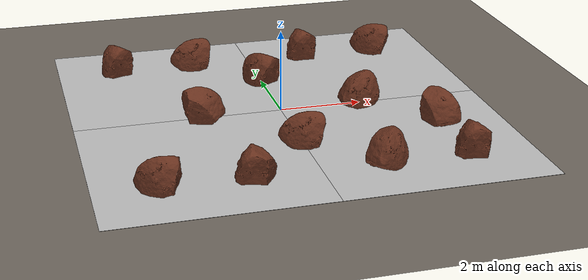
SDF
<?xml version="1.0"?>
<sdf version="1.6">
<world name="mars_terrain_mixed_obstacles">

  <physics type="ode">
    <real_time_update_rate>1000</real_time_update_rate>
    <max_step_size>0.001</max_step_size>
    <real_time_factor>1</real_time_factor>
  </physics>

  <scene>
    <ambient>0.40 0.39 0.38 1</ambient>
    <background>0.55 0.38 0.28 1</background>
    <shadows>true</shadows>
    <grid>false</grid>
  </scene>

  <light type="directional" name="sun">
    <cast_shadows>true</cast_shadows>
    <pose>0.0 0.0 100 0 0.3 0.8</pose>
    <diffuse>1.0 0.90 0.80 1</diffuse>
    <specular>0.4 0.4 0.4 1</specular>
    <direction>-0.5 0.2 -0.9</direction>
  </light>

  <light type="directional" name="fill">
    <cast_shadows>false</cast_shadows>
    <pose>0.0 0.0 50 0 0 0</pose>
    <diffuse>0.3 0.28 0.25 1</diffuse>
    <specular>0.0 0.0 0.0 1</specular>
    <direction>0.5 -0.2 -0.8</direction>
  </light>

  <model name="benchmark_base">
    <static>true</static>
    <pose>0 0 0.006 0 0 0</pose>
    <link name="link">
      <collision name="collision">
        <geometry><plane><normal>0 0 1</normal><size>16.0 16.0</size></plane></geometry>
        <surface><friction><ode><mu>0.9</mu><mu2>0.9</mu2></ode></friction></surface>
      </collision>
      <visual name="visual">
        <geometry><plane><normal>0 0 1</normal><size>16.0 16.0</size></plane></geometry>
        <material><ambient>0.42 0.39 0.36 1</ambient><diffuse>0.42 0.39 0.36 1</diffuse></material>
      </visual>
    </link>
  </model>

  <!-- =================================================================
       TERRAIN ZONES — four quadrants, no gap, no overlap
  ================================================================= -->

  <!-- Q2 soil (x<0,y>0): 15x12 m centred at (-7.5, 6.0) — spawn (-7.5,6.0) -->
  <model name="soil_zone">
    <static>true</static>
    <pose>-2.5 2.5 0.003 0 0 0</pose>
    <link name="link">
      <collision name="collision">
        <geometry><box><size>5.0 5.0 0.006</size></box></geometry>
        <surface><friction><ode><mu>0.9</mu><mu2>0.9</mu2></ode></friction></surface>
      </collision>
      <visual name="visual">
        <geometry><box><size>5.0 5.0 0.006</size></box></geometry>
        <material><script>
          <uri>model://mars_terrain_tex/materials/scripts</uri>
          <uri>model://mars_terrain_tex/materials/textures</uri>
          <name>Mars/Soil</name>
        </script></material>
      </visual>
    </link>
  </model>

  <!-- Q1 bedrock (x>0,y>0): 15x12 m centred at (7.5, 6.0) — spawn (7.5,6.0) -->
  <model name="bedrock_zone">
    <static>true</static>
    <pose>2.5 2.5 0.003 0 0 0</pose>
    <link name="link">
      <collision name="collision">
        <geometry><box><size>5.0 5.0 0.006</size></box></geometry>
      </collision>
      <visual name="visual">
        <geometry><box><size>5.0 5.0 0.006</size></box></geometry>
        <material><script>
          <uri>model://mars_terrain_tex/materials/scripts</uri>
          <uri>model://mars_terrain_tex/materials/textures</uri>
          <name>Mars/Bedrock</name>
        </script></material>
      </visual>
    </link>
  </model>

  <!-- Q3 sand (x<0,y<0): 15x12 m centred at (-7.5,-6.0) — spawn (-7.5,-6.0) -->
  <model name="sand_zone">
    <static>true</static>
    <pose>-2.5 -2.5 0.003 0 0 0</pose>
    <link name="link">
      <collision name="collision">
        <geometry><box><size>5.0 5.0 0.006</size></box></geometry>
      </collision>
      <visual name="visual">
        <geometry><box><size>5.0 5.0 0.006</size></box></geometry>
        <material><script>
          <uri>model://mars_terrain_tex/materials/scripts</uri>
          <uri>model://mars_terrain_tex/materials/textures</uri>
          <name>Mars/Sand</name>
        </script></material>
      </visual>
    </link>
  </model>

  <!-- Q4 rock hazard (x>0,y<0): 15x12 m centred at (7.5,-6.0)
       spawns: (2.0,-4.0) rock_cluster, (2.0,-8.0) boulder_zone, rover faces +x -->
  <model name="rock_ground">
    <static>true</static>
    <pose>2.5 -2.5 0.003 0 0 0</pose>
    <link name="link">
      <collision name="collision">
        <geometry><box><size>5.0 5.0 0.006</size></box></geometry>
      </collision>
      <visual name="visual">
        <geometry><box><size>5.0 5.0 0.006</size></box></geometry>
        <material><script>
          <uri>model://mars_terrain_tex/materials/scripts</uri>
          <uri>model://mars_terrain_tex/materials/textures</uri>
          <name>Mars/Rock</name>
        </script></material>
      </visual>
    </link>
  </model>

  <!-- Large boulders (scale 0.38-0.45) -->

  <!-- Medium rocks near spawn1 (2.0,-4.0) facing +x -->

  <!-- Medium rocks near spawn2 (2.0,-8.0) facing +x -->

  <!-- Guaranteed-encounter rocks, 2.0m out along each sweep direction -->
  <model name="rock_ahead_E"><static>true</static><pose>2.0 0.0 -0.141 0 0.05 3.0</pose>
    <link name="link">
      <collision name="c"><geometry><sphere><radius>0.51</radius></sphere></geometry></collision>
      <visual name="v"><geometry><mesh><uri>model://mars_rock/meshes/model.dae</uri><scale>0.6 0.6 0.6</scale></mesh></geometry>
        <material><script><uri>model://mars_terrain_tex/materials/scripts</uri><uri>model://mars_terrain_tex/materials/textures</uri><name>Mars/Rock</name></script></material>
      </visual></link></model>

  <model name="rock_ahead_N"><static>true</static><pose>0.0 2.0 -0.141 0.05 0 1.4</pose>
    <link name="link">
      <collision name="c"><geometry><sphere><radius>0.51</radius></sphere></geometry></collision>
      <visual name="v"><geometry><mesh><uri>model://mars_rock/meshes/model.dae</uri><scale>0.6 0.6 0.6</scale></mesh></geometry>
        <material><script><uri>model://mars_terrain_tex/materials/scripts</uri><uri>model://mars_terrain_tex/materials/textures</uri><name>Mars/Rock</name></script></material>
      </visual></link></model>

  <model name="rock_ahead_W"><static>true</static><pose>-2.0 0.0 -0.141 0 0.1 5.5</pose>
    <link name="link">
      <collision name="c"><geometry><sphere><radius>0.51</radius></sphere></geometry></collision>
      <visual name="v"><geometry><mesh><uri>model://mars_rock/meshes/model.dae</uri><scale>0.6 0.6 0.6</scale></mesh></geometry>
        <material><script><uri>model://mars_terrain_tex/materials/scripts</uri><uri>model://mars_terrain_tex/materials/textures</uri><name>Mars/Rock</name></script></material>
      </visual></link></model>

  <model name="rock_ahead_S"><static>true</static><pose>0.0 -2.0 -0.141 0.1 0 2.2</pose>
    <link name="link">
      <collision name="c"><geometry><sphere><radius>0.51</radius></sphere></geometry></collision>
      <visual name="v"><geometry><mesh><uri>model://mars_rock/meshes/model.dae</uri><scale>0.6 0.6 0.6</scale></mesh></geometry>
        <material><script><uri>model://mars_terrain_tex/materials/scripts</uri><uri>model://mars_terrain_tex/materials/textures</uri><name>Mars/Rock</name></script></material>
      </visual></link></model>

  <!-- Scattered — soil_zone (x in [-5,0], y in [0,5]) -->
  <model name="soil_obs_1"><static>true</static><pose>-3.5 3.5 -0.141 0 0.05 1.1</pose>
    <link name="link">
      <collision name="c"><geometry><sphere><radius>0.51</radius></sphere></geometry></collision>
      <visual name="v"><geometry><mesh><uri>model://mars_rock/meshes/model.dae</uri><scale>0.6 0.6 0.6</scale></mesh></geometry>
        <material><script><uri>model://mars_terrain_tex/materials/scripts</uri><uri>model://mars_terrain_tex/materials/textures</uri><name>Mars/Rock</name></script></material>
      </visual></link></model>

  <model name="soil_obs_2"><static>true</static><pose>-1.5 3.5 -0.141 0.05 0 2.4</pose>
    <link name="link">
      <collision name="c"><geometry><sphere><radius>0.51</radius></sphere></geometry></collision>
      <visual name="v"><geometry><mesh><uri>model://mars_rock/meshes/model.dae</uri><scale>0.6 0.6 0.6</scale></mesh></geometry>
        <material><script><uri>model://mars_terrain_tex/materials/scripts</uri><uri>model://mars_terrain_tex/materials/textures</uri><name>Mars/Rock</name></script></material>
      </visual></link></model>

  <!-- Scattered — bedrock_zone (x in [0,5], y in [0,5]) -->
  <model name="bedrock_obs_1"><static>true</static><pose>1.5 3.5 -0.141 0 0.05 0.8</pose>
    <link name="link">
      <collision name="c"><geometry><sphere><radius>0.51</radius></sphere></geometry></collision>
      <visual name="v"><geometry><mesh><uri>model://mars_rock/meshes/model.dae</uri><scale>0.6 0.6 0.6</scale></mesh></geometry>
        <material><script><uri>model://mars_terrain_tex/materials/scripts</uri><uri>model://mars_terrain_tex/materials/textures</uri><name>Mars/Rock</name></script></material>
      </visual></link></model>

  <model name="bedrock_obs_2"><static>true</static><pose>3.5 3.5 -0.141 0.05 0 1.9</pose>
    <link name="link">
      <collision name="c"><geometry><sphere><radius>0.51</radius></sphere></geometry></collision>
      <visual name="v"><geometry><mesh><uri>model://mars_rock/meshes/model.dae</uri><scale>0.6 0.6 0.6</scale></mesh></geometry>
        <material><script><uri>model://mars_terrain_tex/materials/scripts</uri><uri>model://mars_terrain_tex/materials/textures</uri><name>Mars/Rock</name></script></material>
      </visual></link></model>

  <!-- Scattered — sand_zone (x in [-5,0], y in [-5,0]) -->
  <model name="sand_obs_1"><static>true</static><pose>-3.5 -3.5 -0.141 0 0.05 2.0</pose>
    <link name="link">
      <collision name="c"><geometry><sphere><radius>0.51</radius></sphere></geometry></collision>
      <visual name="v"><geometry><mesh><uri>model://mars_rock/meshes/model.dae</uri><scale>0.6 0.6 0.6</scale></mesh></geometry>
        <material><script><uri>model://mars_terrain_tex/materials/scripts</uri><uri>model://mars_terrain_tex/materials/textures</uri><name>Mars/Rock</name></script></material>
      </visual></link></model>

  <model name="sand_obs_2"><static>true</static><pose>-1.5 -3.5 -0.141 0.05 0 0.5</pose>
    <link name="link">
      <collision name="c"><geometry><sphere><radius>0.51</radius></sphere></geometry></collision>
      <visual name="v"><geometry><mesh><uri>model://mars_rock/meshes/model.dae</uri><scale>0.6 0.6 0.6</scale></mesh></geometry>
        <material><script><uri>model://mars_terrain_tex/materials/scripts</uri><uri>model://mars_terrain_tex/materials/textures</uri><name>Mars/Rock</name></script></material>
      </visual></link></model>

  <!-- Scattered — rock_ground quadrant (x in [0,5], y in [-5,0]) -->
  <model name="rockzone_obs_1"><static>true</static><pose>3.5 -3.5 -0.141 0 0.05 0.6</pose>
    <link name="link">
      <collision name="c"><geometry><sphere><radius>0.51</radius></sphere></geometry></collision>
      <visual name="v"><geometry><mesh><uri>model://mars_rock/meshes/model.dae</uri><scale>0.6 0.6 0.6</scale></mesh></geometry>
        <material><script><uri>model://mars_terrain_tex/materials/scripts</uri><uri>model://mars_terrain_tex/materials/textures</uri><name>Mars/Rock</name></script></material>
      </visual></link></model>

  <model name="rockzone_obs_2"><static>true</static><pose>1.5 -3.5 -0.141 0.05 0 3.4</pose>
    <link name="link">
      <collision name="c"><geometry><sphere><radius>0.51</radius></sphere></geometry></collision>
      <visual name="v"><geometry><mesh><uri>model://mars_rock/meshes/model.dae</uri><scale>0.6 0.6 0.6</scale></mesh></geometry>
        <material><script><uri>model://mars_terrain_tex/materials/scripts</uri><uri>model://mars_terrain_tex/materials/textures</uri><name>Mars/Rock</name></script></material>
      </visual></link></model>

  <model name="rockzone_obs_3"><static>true</static><pose>3.5 -1.5 -0.141 0 0.1 4.5</pose>
    <link name="link">
      <collision name="c"><geometry><sphere><radius>0.51</radius></sphere></geometry></collision>
      <visual name="v"><geometry><mesh><uri>model://mars_rock/meshes/model.dae</uri><scale>0.6 0.6 0.6</scale></mesh></geometry>
        <material><script><uri>model://mars_terrain_tex/materials/scripts</uri><uri>model://mars_terrain_tex/materials/textures</uri><name>Mars/Rock</name></script></material>
      </visual></link></model>

  <model name="thirdperson_cam_soil_zone"><static>true</static>
    <pose>-1.5 2.5 2.6 0 0.45 3.1416</pose>
    <link name="link">
      <sensor type="camera" name="cam">
        <update_rate>15</update_rate>
        <camera name="c"><horizontal_fov>0.95</horizontal_fov>
          <image><width>640</width><height>480</height><format>R8G8B8</format></image>
          <clip><near>0.05</near><far>300</far></clip>
        </camera>
        <plugin name="cam_plugin" filename="libgazebo_ros_camera.so">
          <ros><namespace>/gazebo_cam/soil_zone</namespace></ros>
          <camera_name>cam</camera_name>
          <frame_name>soil_zone_cam_frame</frame_name>
        </plugin>
      </sensor>
    </link>
  </model>

  <model name="thirdperson_cam_bedrock_zone"><static>true</static>
    <!-- 2026-08-17 v2: closer (3m) + narrower FOV to minimise neighbour-zone
         bleed. Rover keeps facing +x here - already out of the map centre. -->
    <pose>1.5 2.5 2.6 0 0.45 0</pose>
    <link name="link">
      <sensor type="camera" name="cam">
        <update_rate>15</update_rate>
        <camera name="c"><horizontal_fov>0.95</horizontal_fov>
          <image><width>640</width><height>480</height><format>R8G8B8</format></image>
          <clip><near>0.05</near><far>300</far></clip>
        </camera>
        <plugin name="cam_plugin" filename="libgazebo_ros_camera.so">
          <ros><namespace>/gazebo_cam/bedrock_zone</namespace></ros>
          <camera_name>cam</camera_name>
          <frame_name>bedrock_zone_cam_frame</frame_name>
        </plugin>
      </sensor>
    </link>
  </model>

  <model name="thirdperson_cam_sand_zone"><static>true</static>
    <pose>-1.5 -2.5 2.6 0 0.45 3.1416</pose>
    <link name="link">
      <sensor type="camera" name="cam">
        <update_rate>15</update_rate>
        <camera name="c"><horizontal_fov>0.95</horizontal_fov>
          <image><width>640</width><height>480</height><format>R8G8B8</format></image>
          <clip><near>0.05</near><far>300</far></clip>
        </camera>
        <plugin name="cam_plugin" filename="libgazebo_ros_camera.so">
          <ros><namespace>/gazebo_cam/sand_zone</namespace></ros>
          <camera_name>cam</camera_name>
          <frame_name>sand_zone_cam_frame</frame_name>
        </plugin>
      </sensor>
    </link>
  </model>

  <model name="thirdperson_cam_rock_cluster"><static>true</static>
    <pose>0.6667 -3.125 2.6 0 0.45 1.5708</pose>
    <link name="link">
      <sensor type="camera" name="cam">
        <update_rate>15</update_rate>
        <camera name="c"><horizontal_fov>0.95</horizontal_fov>
          <image><width>640</width><height>480</height><format>R8G8B8</format></image>
          <clip><near>0.05</near><far>300</far></clip>
        </camera>
        <plugin name="cam_plugin" filename="libgazebo_ros_camera.so">
          <ros><namespace>/gazebo_cam/rock_cluster</namespace></ros>
          <camera_name>cam</camera_name>
          <frame_name>rock_cluster_cam_frame</frame_name>
        </plugin>
      </sensor>
    </link>
  </model>

  <model name="thirdperson_cam_boulder_zone"><static>true</static>
    <pose>2.6667 -3.3333 2.6 0 0.45 3.1416</pose>
    <link name="link">
      <sensor type="camera" name="cam">
        <update_rate>15</update_rate>
        <camera name="c"><horizontal_fov>0.95</horizontal_fov>
          <image><width>640</width><height>480</height><format>R8G8B8</format></image>
          <clip><near>0.05</near><far>300</far></clip>
        </camera>
        <plugin name="cam_plugin" filename="libgazebo_ros_camera.so">
          <ros><namespace>/gazebo_cam/boulder_zone</namespace></ros>
          <camera_name>cam</camera_name>
          <frame_name>boulder_zone_cam_frame</frame_name>
        </plugin>
      </sensor>
    </link>
  </model>

</world>
</sdf>
